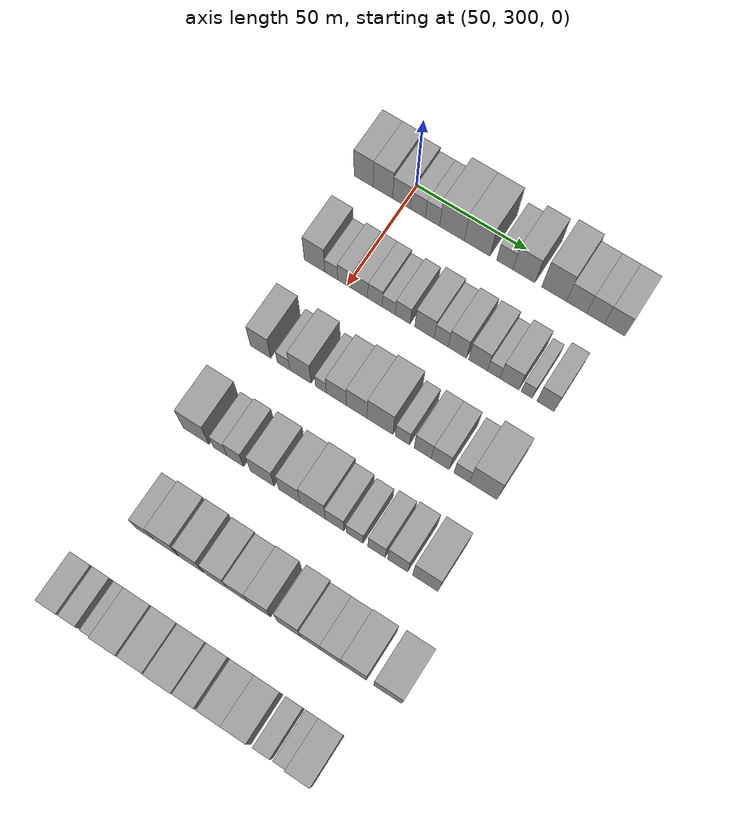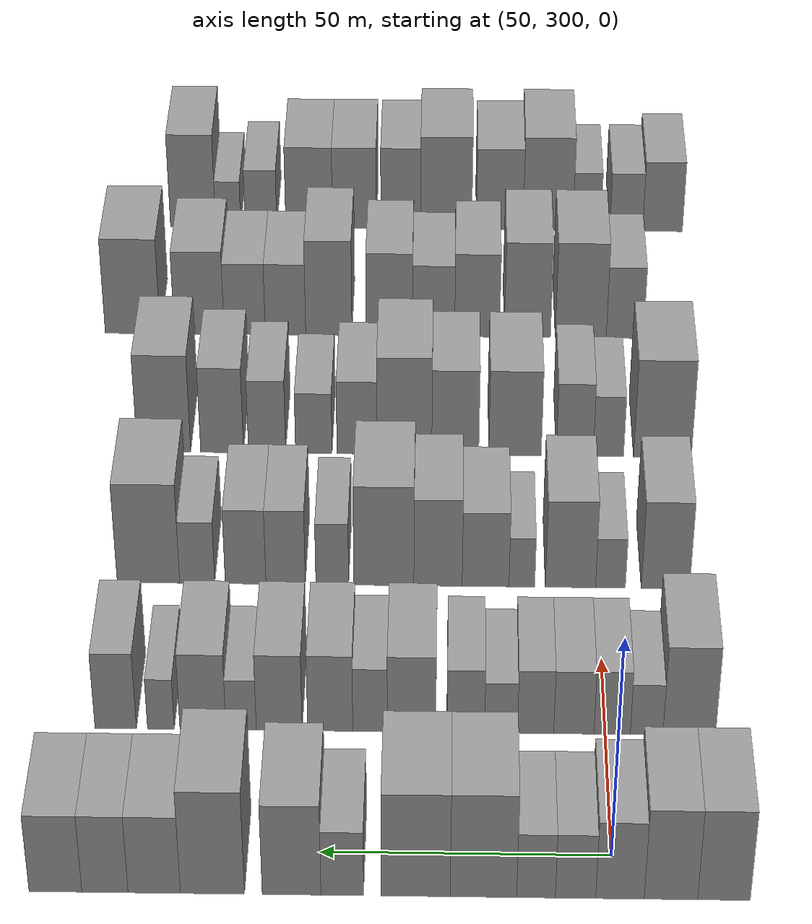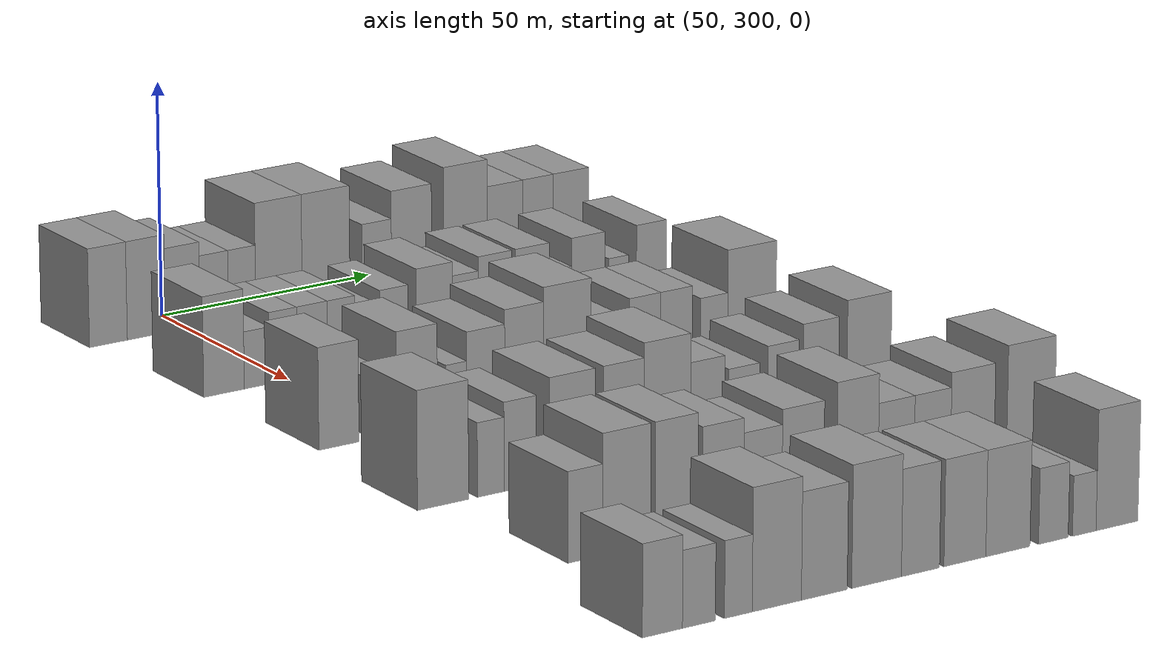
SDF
<sdf version="1.6">
 <world name="default">
  <model name="building_97">
   <static>1</static>
   <pose>50.0000 281.4803 0 0.000000 0.000000 0.000000</pose>
   <link name="link">
    <pose>0 0 10.50 0 0 0</pose>
    <collision name="collision"><geometry><box><size>20.0000 8.8783 21.0000</size></box></geometry></collision>
    <visual name="visual">
     <cast_shadows>0</cast_shadows>
     <geometry><box><size>20.0000 8.8783 21.0000</size></box></geometry>
     <material>
      <script>
       <uri>model://grey_wall/materials/scripts</uri>
       <uri>model://grey_wall/materials/textures</uri>
       <name>vrc/grey_wall</name>
      </script>
     </material>
    </visual>
   </link>
  </model>
  <model name="building_98">
   <static>1</static>
   <pose>50.0000 290.4282 0 0.000000 0.000000 0.000000</pose>
   <link name="link">
    <pose>0 0 10.50 0 0 0</pose>
    <collision name="collision"><geometry><box><size>20.0000 9.0176 21.0000</size></box></geometry></collision>
    <visual name="visual">
     <cast_shadows>0</cast_shadows>
     <geometry><box><size>20.0000 9.0176 21.0000</size></box></geometry>
     <material>
      <script>
       <uri>model://grey_wall/materials/scripts</uri>
       <uri>model://grey_wall/materials/textures</uri>
       <name>vrc/grey_wall</name>
      </script>
     </material>
    </visual>
   </link>
  </model>
  <model name="building_99">
   <static>1</static>
   <pose>50.0000 299.0356 0 0.000000 0.000000 0.000000</pose>
   <link name="link">
    <pose>0 0 9.00 0 0 0</pose>
    <collision name="collision"><geometry><box><size>20.0000 8.1972 18.0000</size></box></geometry></collision>
    <visual name="visual">
     <cast_shadows>0</cast_shadows>
     <geometry><box><size>20.0000 8.1972 18.0000</size></box></geometry>
     <material>
      <script>
       <uri>model://grey_wall/materials/scripts</uri>
       <uri>model://grey_wall/materials/textures</uri>
       <name>vrc/grey_wall</name>
      </script>
     </material>
    </visual>
   </link>
  </model>
  <model name="building_100">
   <static>1</static>
   <pose>50.0000 306.5376 0 0.000000 0.000000 0.000000</pose>
   <link name="link">
    <pose>0 0 7.50 0 0 0</pose>
    <collision name="collision"><geometry><box><size>20.0000 6.8069 15.0000</size></box></geometry></collision>
    <visual name="visual">
     <cast_shadows>0</cast_shadows>
     <geometry><box><size>20.0000 6.8069 15.0000</size></box></geometry>
     <material>
      <script>
       <uri>model://grey_wall/materials/scripts</uri>
       <uri>model://grey_wall/materials/textures</uri>
       <name>vrc/grey_wall</name>
      </script>
     </material>
    </visual>
   </link>
  </model>
  <model name="building_101">
   <static>1</static>
   <pose>50.0000 313.2041 0 0.000000 0.000000 0.000000</pose>
   <link name="link">
    <pose>0 0 7.50 0 0 0</pose>
    <collision name="collision"><geometry><box><size>20.0000 6.5261 15.0000</size></box></geometry></collision>
    <visual name="visual">
     <cast_shadows>0</cast_shadows>
     <geometry><box><size>20.0000 6.5261 15.0000</size></box></geometry>
     <material>
      <script>
       <uri>model://grey_wall/materials/scripts</uri>
       <uri>model://grey_wall/materials/textures</uri>
       <name>vrc/grey_wall</name>
      </script>
     </material>
    </visual>
   </link>
  </model>
  <model name="building_102">
   <static>1</static>
   <pose>50.0000 322.0785 0 0.000000 0.000000 0.000000</pose>
   <link name="link">
    <pose>0 0 12.00 0 0 0</pose>
    <collision name="collision"><geometry><box><size>20.0000 11.2226 24.0000</size></box></geometry></collision>
    <visual name="visual">
     <cast_shadows>0</cast_shadows>
     <geometry><box><size>20.0000 11.2226 24.0000</size></box></geometry>
     <material>
      <script>
       <uri>model://grey_wall/materials/scripts</uri>
       <uri>model://grey_wall/materials/textures</uri>
       <name>vrc/grey_wall</name>
      </script>
     </material>
    </visual>
   </link>
  </model>
  <model name="building_103">
   <static>1</static>
   <pose>50.0000 333.5019 0 0.000000 0.000000 0.000000</pose>
   <link name="link">
    <pose>0 0 12.00 0 0 0</pose>
    <collision name="collision"><geometry><box><size>20.0000 11.6243 24.0000</size></box></geometry></collision>
    <visual name="visual">
     <cast_shadows>0</cast_shadows>
     <geometry><box><size>20.0000 11.6243 24.0000</size></box></geometry>
     <material>
      <script>
       <uri>model://grey_wall/materials/scripts</uri>
       <uri>model://grey_wall/materials/textures</uri>
       <name>vrc/grey_wall</name>
      </script>
     </material>
    </visual>
   </link>
  </model>
  <model name="building_104">
   <static>1</static>
   <pose>50.0000 345.9176 0 0.000000 0.000000 0.000000</pose>
   <link name="link">
    <pose>0 0 7.50 0 0 0</pose>
    <collision name="collision"><geometry><box><size>20.0000 7.2070 15.0000</size></box></geometry></collision>
    <visual name="visual">
     <cast_shadows>0</cast_shadows>
     <geometry><box><size>20.0000 7.2070 15.0000</size></box></geometry>
     <material>
      <script>
       <uri>model://grey_wall/materials/scripts</uri>
       <uri>model://grey_wall/materials/textures</uri>
       <name>vrc/grey_wall</name>
      </script>
     </material>
    </visual>
   </link>
  </model>
  <model name="building_105">
   <static>1</static>
   <pose>50.0000 354.4840 0 0.000000 0.000000 0.000000</pose>
   <link name="link">
    <pose>0 0 10.50 0 0 0</pose>
    <collision name="collision"><geometry><box><size>20.0000 9.9259 21.0000</size></box></geometry></collision>
    <visual name="visual">
     <cast_shadows>0</cast_shadows>
     <geometry><box><size>20.0000 9.9259 21.0000</size></box></geometry>
     <material>
      <script>
       <uri>model://grey_wall/materials/scripts</uri>
       <uri>model://grey_wall/materials/textures</uri>
       <name>vrc/grey_wall</name>
      </script>
     </material>
    </visual>
   </link>
  </model>
  <model name="building_106">
   <static>1</static>
   <pose>50.0000 367.8768 0 0.000000 0.000000 0.000000</pose>
   <link name="link">
    <pose>0 0 12.00 0 0 0</pose>
    <collision name="collision"><geometry><box><size>20.0000 10.8597 24.0000</size></box></geometry></collision>
    <visual name="visual">
     <cast_shadows>0</cast_shadows>
     <geometry><box><size>20.0000 10.8597 24.0000</size></box></geometry>
     <material>
      <script>
       <uri>model://grey_wall/materials/scripts</uri>
       <uri>model://grey_wall/materials/textures</uri>
       <name>vrc/grey_wall</name>
      </script>
     </material>
    </visual>
   </link>
  </model>
  <model name="building_107">
   <static>1</static>
   <pose>50.0000 377.7399 0 0.000000 0.000000 0.000000</pose>
   <link name="link">
    <pose>0 0 9.00 0 0 0</pose>
    <collision name="collision"><geometry><box><size>20.0000 8.8666 18.0000</size></box></geometry></collision>
    <visual name="visual">
     <cast_shadows>0</cast_shadows>
     <geometry><box><size>20.0000 8.8666 18.0000</size></box></geometry>
     <material>
      <script>
       <uri>model://grey_wall/materials/scripts</uri>
       <uri>model://grey_wall/materials/textures</uri>
       <name>vrc/grey_wall</name>
      </script>
     </material>
    </visual>
   </link>
  </model>
  <model name="building_108">
   <static>1</static>
   <pose>50.0000 386.0869 0 0.000000 0.000000 0.000000</pose>
   <link name="link">
    <pose>0 0 9.00 0 0 0</pose>
    <collision name="collision"><geometry><box><size>20.0000 7.8273 18.0000</size></box></geometry></collision>
    <visual name="visual">
     <cast_shadows>0</cast_shadows>
     <geometry><box><size>20.0000 7.8273 18.0000</size></box></geometry>
     <material>
      <script>
       <uri>model://grey_wall/materials/scripts</uri>
       <uri>model://grey_wall/materials/textures</uri>
       <name>vrc/grey_wall</name>
      </script>
     </material>
    </visual>
   </link>
  </model>
  <model name="building_109">
   <static>1</static>
   <pose>50.0000 394.4726 0 0.000000 0.000000 0.000000</pose>
   <link name="link">
    <pose>0 0 9.00 0 0 0</pose>
    <collision name="collision"><geometry><box><size>20.0000 8.9442 18.0000</size></box></geometry></collision>
    <visual name="visual">
     <cast_shadows>0</cast_shadows>
     <geometry><box><size>20.0000 8.9442 18.0000</size></box></geometry>
     <material>
      <script>
       <uri>model://grey_wall/materials/scripts</uri>
       <uri>model://grey_wall/materials/textures</uri>
       <name>vrc/grey_wall</name>
      </script>
     </material>
    </visual>
   </link>
  </model>
  <model name="building_243">
   <static>1</static>
   <pose>90.0000 285.0131 0 0.000000 0.000000 0.000000</pose>
   <link name="link">
    <pose>0 0 10.50 0 0 0</pose>
    <collision name="collision"><geometry><box><size>20.0000 9.4214 21.0000</size></box></geometry></collision>
    <visual name="visual">
     <cast_shadows>0</cast_shadows>
     <geometry><box><size>20.0000 9.4214 21.0000</size></box></geometry>
     <material>
      <script>
       <uri>model://grey_wall/materials/scripts</uri>
       <uri>model://grey_wall/materials/textures</uri>
       <name>vrc/grey_wall</name>
      </script>
     </material>
    </visual>
   </link>
  </model>
  <model name="building_244">
   <static>1</static>
   <pose>90.0000 292.6523 0 0.000000 0.000000 0.000000</pose>
   <link name="link">
    <pose>0 0 6.00 0 0 0</pose>
    <collision name="collision"><geometry><box><size>20.0000 5.8571 12.0000</size></box></geometry></collision>
    <visual name="visual">
     <cast_shadows>0</cast_shadows>
     <geometry><box><size>20.0000 5.8571 12.0000</size></box></geometry>
     <material>
      <script>
       <uri>model://grey_wall/materials/scripts</uri>
       <uri>model://grey_wall/materials/textures</uri>
       <name>vrc/grey_wall</name>
      </script>
     </material>
    </visual>
   </link>
  </model>
  <model name="building_245">
   <static>1</static>
   <pose>90.0000 298.8329 0 0.000000 0.000000 0.000000</pose>
   <link name="link">
    <pose>0 0 7.50 0 0 0</pose>
    <collision name="collision"><geometry><box><size>20.0000 6.5039 15.0000</size></box></geometry></collision>
    <visual name="visual">
     <cast_shadows>0</cast_shadows>
     <geometry><box><size>20.0000 6.5039 15.0000</size></box></geometry>
     <material>
      <script>
       <uri>model://grey_wall/materials/scripts</uri>
       <uri>model://grey_wall/materials/textures</uri>
       <name>vrc/grey_wall</name>
      </script>
     </material>
    </visual>
   </link>
  </model>
  <model name="building_246">
   <static>1</static>
   <pose>90.0000 305.6870 0 0.000000 0.000000 0.000000</pose>
   <link name="link">
    <pose>0 0 7.50 0 0 0</pose>
    <collision name="collision"><geometry><box><size>20.0000 7.2043 15.0000</size></box></geometry></collision>
    <visual name="visual">
     <cast_shadows>0</cast_shadows>
     <geometry><box><size>20.0000 7.2043 15.0000</size></box></geometry>
     <material>
      <script>
       <uri>model://grey_wall/materials/scripts</uri>
       <uri>model://grey_wall/materials/textures</uri>
       <name>vrc/grey_wall</name>
      </script>
     </material>
    </visual>
   </link>
  </model>
  <model name="building_247">
   <static>1</static>
   <pose>90.0000 312.5411 0 0.000000 0.000000 0.000000</pose>
   <link name="link">
    <pose>0 0 7.50 0 0 0</pose>
    <collision name="collision"><geometry><box><size>20.0000 6.5039 15.0000</size></box></geometry></collision>
    <visual name="visual">
     <cast_shadows>0</cast_shadows>
     <geometry><box><size>20.0000 6.5039 15.0000</size></box></geometry>
     <material>
      <script>
       <uri>model://grey_wall/materials/scripts</uri>
       <uri>model://grey_wall/materials/textures</uri>
       <name>vrc/grey_wall</name>
      </script>
     </material>
    </visual>
   </link>
  </model>
  <model name="building_248">
   <static>1</static>
   <pose>90.0000 318.7344 0 0.000000 0.000000 0.000000</pose>
   <link name="link">
    <pose>0 0 6.00 0 0 0</pose>
    <collision name="collision"><geometry><box><size>20.0000 5.8826 12.0000</size></box></geometry></collision>
    <visual name="visual">
     <cast_shadows>0</cast_shadows>
     <geometry><box><size>20.0000 5.8826 12.0000</size></box></geometry>
     <material>
      <script>
       <uri>model://grey_wall/materials/scripts</uri>
       <uri>model://grey_wall/materials/textures</uri>
       <name>vrc/grey_wall</name>
      </script>
     </material>
    </visual>
   </link>
  </model>
  <model name="building_249">
   <static>1</static>
   <pose>90.0000 325.0450 0 0.000000 0.000000 0.000000</pose>
   <link name="link">
    <pose>0 0 7.50 0 0 0</pose>
    <collision name="collision"><geometry><box><size>20.0000 6.7387 15.0000</size></box></geometry></collision>
    <visual name="visual">
     <cast_shadows>0</cast_shadows>
     <geometry><box><size>20.0000 6.7387 15.0000</size></box></geometry>
     <material>
      <script>
       <uri>model://grey_wall/materials/scripts</uri>
       <uri>model://grey_wall/materials/textures</uri>
       <name>vrc/grey_wall</name>
      </script>
     </material>
    </visual>
   </link>
  </model>
  <model name="building_250">
   <static>1</static>
   <pose>90.0000 334.7540 0 0.000000 0.000000 0.000000</pose>
   <link name="link">
    <pose>0 0 9.00 0 0 0</pose>
    <collision name="collision"><geometry><box><size>20.0000 8.6794 18.0000</size></box></geometry></collision>
    <visual name="visual">
     <cast_shadows>0</cast_shadows>
     <geometry><box><size>20.0000 8.6794 18.0000</size></box></geometry>
     <material>
      <script>
       <uri>model://grey_wall/materials/scripts</uri>
       <uri>model://grey_wall/materials/textures</uri>
       <name>vrc/grey_wall</name>
      </script>
     </material>
    </visual>
   </link>
  </model>
  <model name="building_251">
   <static>1</static>
   <pose>90.0000 342.1892 0 0.000000 0.000000 0.000000</pose>
   <link name="link">
    <pose>0 0 7.50 0 0 0</pose>
    <collision name="collision"><geometry><box><size>20.0000 6.1909 15.0000</size></box></geometry></collision>
    <visual name="visual">
     <cast_shadows>0</cast_shadows>
     <geometry><box><size>20.0000 6.1909 15.0000</size></box></geometry>
     <material>
      <script>
       <uri>model://grey_wall/materials/scripts</uri>
       <uri>model://grey_wall/materials/textures</uri>
       <name>vrc/grey_wall</name>
      </script>
     </material>
    </visual>
   </link>
  </model>
  <model name="building_252">
   <static>1</static>
   <pose>90.0000 349.3246 0 0.000000 0.000000 0.000000</pose>
   <link name="link">
    <pose>0 0 9.00 0 0 0</pose>
    <collision name="collision"><geometry><box><size>20.0000 8.0799 18.0000</size></box></geometry></collision>
    <visual name="visual">
     <cast_shadows>0</cast_shadows>
     <geometry><box><size>20.0000 8.0799 18.0000</size></box></geometry>
     <material>
      <script>
       <uri>model://grey_wall/materials/scripts</uri>
       <uri>model://grey_wall/materials/textures</uri>
       <name>vrc/grey_wall</name>
      </script>
     </material>
    </visual>
   </link>
  </model>
  <model name="building_253">
   <static>1</static>
   <pose>90.0000 358.4822 0 0.000000 0.000000 0.000000</pose>
   <link name="link">
    <pose>0 0 9.00 0 0 0</pose>
    <collision name="collision"><geometry><box><size>20.0000 8.2353 18.0000</size></box></geometry></collision>
    <visual name="visual">
     <cast_shadows>0</cast_shadows>
     <geometry><box><size>20.0000 8.2353 18.0000</size></box></geometry>
     <material>
      <script>
       <uri>model://grey_wall/materials/scripts</uri>
       <uri>model://grey_wall/materials/textures</uri>
       <name>vrc/grey_wall</name>
      </script>
     </material>
    </visual>
   </link>
  </model>
  <model name="building_254">
   <static>1</static>
   <pose>90.0000 365.3271 0 0.000000 0.000000 0.000000</pose>
   <link name="link">
    <pose>0 0 6.00 0 0 0</pose>
    <collision name="collision"><geometry><box><size>20.0000 5.4544 12.0000</size></box></geometry></collision>
    <visual name="visual">
     <cast_shadows>0</cast_shadows>
     <geometry><box><size>20.0000 5.4544 12.0000</size></box></geometry>
     <material>
      <script>
       <uri>model://grey_wall/materials/scripts</uri>
       <uri>model://grey_wall/materials/textures</uri>
       <name>vrc/grey_wall</name>
      </script>
     </material>
    </visual>
   </link>
  </model>
  <model name="building_255">
   <static>1</static>
   <pose>90.0000 372.1898 0 0.000000 0.000000 0.000000</pose>
   <link name="link">
    <pose>0 0 9.00 0 0 0</pose>
    <collision name="collision"><geometry><box><size>20.0000 8.2711 18.0000</size></box></geometry></collision>
    <visual name="visual">
     <cast_shadows>0</cast_shadows>
     <geometry><box><size>20.0000 8.2711 18.0000</size></box></geometry>
     <material>
      <script>
       <uri>model://grey_wall/materials/scripts</uri>
       <uri>model://grey_wall/materials/textures</uri>
       <name>vrc/grey_wall</name>
      </script>
     </material>
    </visual>
   </link>
  </model>
  <model name="building_256">
   <static>1</static>
   <pose>90.0000 379.7319 0 0.000000 0.000000 0.000000</pose>
   <link name="link">
    <pose>0 0 6.00 0 0 0</pose>
    <collision name="collision"><geometry><box><size>20.0000 4.8130 12.0000</size></box></geometry></collision>
    <visual name="visual">
     <cast_shadows>0</cast_shadows>
     <geometry><box><size>20.0000 4.8130 12.0000</size></box></geometry>
     <material>
      <script>
       <uri>model://grey_wall/materials/scripts</uri>
       <uri>model://grey_wall/materials/textures</uri>
       <name>vrc/grey_wall</name>
      </script>
     </material>
    </visual>
   </link>
  </model>
  <model name="building_257">
   <static>1</static>
   <pose>90.0000 387.8607 0 0.000000 0.000000 0.000000</pose>
   <link name="link">
    <pose>0 0 9.00 0 0 0</pose>
    <collision name="collision"><geometry><box><size>20.0000 7.4447 18.0000</size></box></geometry></collision>
    <visual name="visual">
     <cast_shadows>0</cast_shadows>
     <geometry><box><size>20.0000 7.4447 18.0000</size></box></geometry>
     <material>
      <script>
       <uri>model://grey_wall/materials/scripts</uri>
       <uri>model://grey_wall/materials/textures</uri>
       <name>vrc/grey_wall</name>
      </script>
     </material>
    </visual>
   </link>
  </model>
  <model name="building_377">
   <static>1</static>
   <pose>130.0000 287.1975 0 0.000000 0.000000 0.000000</pose>
   <link name="link">
    <pose>0 0 10.50 0 0 0</pose>
    <collision name="collision"><geometry><box><size>20.0000 9.1685 21.0000</size></box></geometry></collision>
    <visual name="visual">
     <cast_shadows>0</cast_shadows>
     <geometry><box><size>20.0000 9.1685 21.0000</size></box></geometry>
     <material>
      <script>
       <uri>model://grey_wall/materials/scripts</uri>
       <uri>model://grey_wall/materials/textures</uri>
       <name>vrc/grey_wall</name>
      </script>
     </material>
    </visual>
   </link>
  </model>
  <model name="building_378">
   <static>1</static>
   <pose>130.0000 297.6153 0 0.000000 0.000000 0.000000</pose>
   <link name="link">
    <pose>0 0 6.00 0 0 0</pose>
    <collision name="collision"><geometry><box><size>20.0000 5.6670 12.0000</size></box></geometry></collision>
    <visual name="visual">
     <cast_shadows>0</cast_shadows>
     <geometry><box><size>20.0000 5.6670 12.0000</size></box></geometry>
     <material>
      <script>
       <uri>model://grey_wall/materials/scripts</uri>
       <uri>model://grey_wall/materials/textures</uri>
       <name>vrc/grey_wall</name>
      </script>
     </material>
    </visual>
   </link>
  </model>
  <model name="building_379">
   <static>1</static>
   <pose>130.0000 305.1991 0 0.000000 0.000000 0.000000</pose>
   <link name="link">
    <pose>0 0 10.50 0 0 0</pose>
    <collision name="collision"><geometry><box><size>20.0000 9.5007 21.0000</size></box></geometry></collision>
    <visual name="visual">
     <cast_shadows>0</cast_shadows>
     <geometry><box><size>20.0000 9.5007 21.0000</size></box></geometry>
     <material>
      <script>
       <uri>model://grey_wall/materials/scripts</uri>
       <uri>model://grey_wall/materials/textures</uri>
       <name>vrc/grey_wall</name>
      </script>
     </material>
    </visual>
   </link>
  </model>
  <model name="building_380">
   <static>1</static>
   <pose>130.0000 314.3895 0 0.000000 0.000000 0.000000</pose>
   <link name="link">
    <pose>0 0 6.00 0 0 0</pose>
    <collision name="collision"><geometry><box><size>20.0000 4.8801 12.0000</size></box></geometry></collision>
    <visual name="visual">
     <cast_shadows>0</cast_shadows>
     <geometry><box><size>20.0000 4.8801 12.0000</size></box></geometry>
     <material>
      <script>
       <uri>model://grey_wall/materials/scripts</uri>
       <uri>model://grey_wall/materials/textures</uri>
       <name>vrc/grey_wall</name>
      </script>
     </material>
    </visual>
   </link>
  </model>
  <model name="building_381">
   <static>1</static>
   <pose>130.0000 321.2710 0 0.000000 0.000000 0.000000</pose>
   <link name="link">
    <pose>0 0 9.00 0 0 0</pose>
    <collision name="collision"><geometry><box><size>20.0000 8.8830 18.0000</size></box></geometry></collision>
    <visual name="visual">
     <cast_shadows>0</cast_shadows>
     <geometry><box><size>20.0000 8.8830 18.0000</size></box></geometry>
     <material>
      <script>
       <uri>model://grey_wall/materials/scripts</uri>
       <uri>model://grey_wall/materials/textures</uri>
       <name>vrc/grey_wall</name>
      </script>
     </material>
    </visual>
   </link>
  </model>
  <model name="building_382">
   <static>1</static>
   <pose>130.0000 330.2864 0 0.000000 0.000000 0.000000</pose>
   <link name="link">
    <pose>0 0 10.50 0 0 0</pose>
    <collision name="collision"><geometry><box><size>20.0000 9.1477 21.0000</size></box></geometry></collision>
    <visual name="visual">
     <cast_shadows>0</cast_shadows>
     <geometry><box><size>20.0000 9.1477 21.0000</size></box></geometry>
     <material>
      <script>
       <uri>model://grey_wall/materials/scripts</uri>
       <uri>model://grey_wall/materials/textures</uri>
       <name>vrc/grey_wall</name>
      </script>
     </material>
    </visual>
   </link>
  </model>
  <model name="building_383">
   <static>1</static>
   <pose>130.0000 340.5444 0 0.000000 0.000000 0.000000</pose>
   <link name="link">
    <pose>0 0 12.00 0 0 0</pose>
    <collision name="collision"><geometry><box><size>20.0000 11.3683 24.0000</size></box></geometry></collision>
    <visual name="visual">
     <cast_shadows>0</cast_shadows>
     <geometry><box><size>20.0000 11.3683 24.0000</size></box></geometry>
     <material>
      <script>
       <uri>model://grey_wall/materials/scripts</uri>
       <uri>model://grey_wall/materials/textures</uri>
       <name>vrc/grey_wall</name>
      </script>
     </material>
    </visual>
   </link>
  </model>
  <model name="building_384">
   <static>1</static>
   <pose>130.0000 350.3355 0 0.000000 0.000000 0.000000</pose>
   <link name="link">
    <pose>0 0 7.50 0 0 0</pose>
    <collision name="collision"><geometry><box><size>20.0000 6.2139 15.0000</size></box></geometry></collision>
    <visual name="visual">
     <cast_shadows>0</cast_shadows>
     <geometry><box><size>20.0000 6.2139 15.0000</size></box></geometry>
     <material>
      <script>
       <uri>model://grey_wall/materials/scripts</uri>
       <uri>model://grey_wall/materials/textures</uri>
       <name>vrc/grey_wall</name>
      </script>
     </material>
    </visual>
   </link>
  </model>
  <model name="building_385">
   <static>1</static>
   <pose>130.0000 359.1834 0 0.000000 0.000000 0.000000</pose>
   <link name="link">
    <pose>0 0 9.00 0 0 0</pose>
    <collision name="collision"><geometry><box><size>20.0000 7.4818 18.0000</size></box></geometry></collision>
    <visual name="visual">
     <cast_shadows>0</cast_shadows>
     <geometry><box><size>20.0000 7.4818 18.0000</size></box></geometry>
     <material>
      <script>
       <uri>model://grey_wall/materials/scripts</uri>
       <uri>model://grey_wall/materials/textures</uri>
       <name>vrc/grey_wall</name>
      </script>
     </material>
    </visual>
   </link>
  </model>
  <model name="building_386">
   <static>1</static>
   <pose>130.0000 366.7861 0 0.000000 0.000000 0.000000</pose>
   <link name="link">
    <pose>0 0 9.00 0 0 0</pose>
    <collision name="collision"><geometry><box><size>20.0000 7.7238 18.0000</size></box></geometry></collision>
    <visual name="visual">
     <cast_shadows>0</cast_shadows>
     <geometry><box><size>20.0000 7.7238 18.0000</size></box></geometry>
     <material>
      <script>
       <uri>model://grey_wall/materials/scripts</uri>
       <uri>model://grey_wall/materials/textures</uri>
       <name>vrc/grey_wall</name>
      </script>
     </material>
    </visual>
   </link>
  </model>
  <model name="building_387">
   <static>1</static>
   <pose>130.0000 375.9779 0 0.000000 0.000000 0.000000</pose>
   <link name="link">
    <pose>0 0 7.50 0 0 0</pose>
    <collision name="collision"><geometry><box><size>20.0000 6.6596 15.0000</size></box></geometry></collision>
    <visual name="visual">
     <cast_shadows>0</cast_shadows>
     <geometry><box><size>20.0000 6.6596 15.0000</size></box></geometry>
     <material>
      <script>
       <uri>model://grey_wall/materials/scripts</uri>
       <uri>model://grey_wall/materials/textures</uri>
       <name>vrc/grey_wall</name>
      </script>
     </material>
    </visual>
   </link>
  </model>
  <model name="building_388">
   <static>1</static>
   <pose>130.0000 385.2452 0 0.000000 0.000000 0.000000</pose>
   <link name="link">
    <pose>0 0 12.00 0 0 0</pose>
    <collision name="collision"><geometry><box><size>20.0000 11.8752 24.0000</size></box></geometry></collision>
    <visual name="visual">
     <cast_shadows>0</cast_shadows>
     <geometry><box><size>20.0000 11.8752 24.0000</size></box></geometry>
     <material>
      <script>
       <uri>model://grey_wall/materials/scripts</uri>
       <uri>model://grey_wall/materials/textures</uri>
       <name>vrc/grey_wall</name>
      </script>
     </material>
    </visual>
   </link>
  </model>
  <model name="building_515">
   <static>1</static>
   <pose>170.0000 285.7174 0 0.000000 0.000000 0.000000</pose>
   <link name="link">
    <pose>0 0 12.00 0 0 0</pose>
    <collision name="collision"><geometry><box><size>20.0000 11.5358 24.0000</size></box></geometry></collision>
    <visual name="visual">
     <cast_shadows>0</cast_shadows>
     <geometry><box><size>20.0000 11.5358 24.0000</size></box></geometry>
     <material>
      <script>
       <uri>model://grey_wall/materials/scripts</uri>
       <uri>model://grey_wall/materials/textures</uri>
       <name>vrc/grey_wall</name>
      </script>
     </material>
    </visual>
   </link>
  </model>
  <model name="building_516">
   <static>1</static>
   <pose>170.0000 296.5160 0 0.000000 0.000000 0.000000</pose>
   <link name="link">
    <pose>0 0 7.50 0 0 0</pose>
    <collision name="collision"><geometry><box><size>20.0000 6.0614 15.0000</size></box></geometry></collision>
    <visual name="visual">
     <cast_shadows>0</cast_shadows>
     <geometry><box><size>20.0000 6.0614 15.0000</size></box></geometry>
     <material>
      <script>
       <uri>model://grey_wall/materials/scripts</uri>
       <uri>model://grey_wall/materials/textures</uri>
       <name>vrc/grey_wall</name>
      </script>
     </material>
    </visual>
   </link>
  </model>
  <model name="building_517">
   <static>1</static>
   <pose>170.0000 303.2435 0 0.000000 0.000000 0.000000</pose>
   <link name="link">
    <pose>0 0 9.00 0 0 0</pose>
    <collision name="collision"><geometry><box><size>20.0000 7.3937 18.0000</size></box></geometry></collision>
    <visual name="visual">
     <cast_shadows>0</cast_shadows>
     <geometry><box><size>20.0000 7.3937 18.0000</size></box></geometry>
     <material>
      <script>
       <uri>model://grey_wall/materials/scripts</uri>
       <uri>model://grey_wall/materials/textures</uri>
       <name>vrc/grey_wall</name>
      </script>
     </material>
    </visual>
   </link>
  </model>
  <model name="building_518">
   <static>1</static>
   <pose>170.0000 315.1786 0 0.000000 0.000000 0.000000</pose>
   <link name="link">
    <pose>0 0 10.50 0 0 0</pose>
    <collision name="collision"><geometry><box><size>20.0000 10.4764 21.0000</size></box></geometry></collision>
    <visual name="visual">
     <cast_shadows>0</cast_shadows>
     <geometry><box><size>20.0000 10.4764 21.0000</size></box></geometry>
     <material>
      <script>
       <uri>model://grey_wall/materials/scripts</uri>
       <uri>model://grey_wall/materials/textures</uri>
       <name>vrc/grey_wall</name>
      </script>
     </material>
    </visual>
   </link>
  </model>
  <model name="building_519">
   <static>1</static>
   <pose>170.0000 327.1107 0 0.000000 0.000000 0.000000</pose>
   <link name="link">
    <pose>0 0 10.50 0 0 0</pose>
    <collision name="collision"><geometry><box><size>20.0000 9.3878 21.0000</size></box></geometry></collision>
    <visual name="visual">
     <cast_shadows>0</cast_shadows>
     <geometry><box><size>20.0000 9.3878 21.0000</size></box></geometry>
     <material>
      <script>
       <uri>model://grey_wall/materials/scripts</uri>
       <uri>model://grey_wall/materials/textures</uri>
       <name>vrc/grey_wall</name>
      </script>
     </material>
    </visual>
   </link>
  </model>
  <model name="building_520">
   <static>1</static>
   <pose>170.0000 337.2861 0 0.000000 0.000000 0.000000</pose>
   <link name="link">
    <pose>0 0 12.00 0 0 0</pose>
    <collision name="collision"><geometry><box><size>20.0000 10.9631 24.0000</size></box></geometry></collision>
    <visual name="visual">
     <cast_shadows>0</cast_shadows>
     <geometry><box><size>20.0000 10.9631 24.0000</size></box></geometry>
     <material>
      <script>
       <uri>model://grey_wall/materials/scripts</uri>
       <uri>model://grey_wall/materials/textures</uri>
       <name>vrc/grey_wall</name>
      </script>
     </material>
    </visual>
   </link>
  </model>
  <model name="building_521">
   <static>1</static>
   <pose>170.0000 346.7545 0 0.000000 0.000000 0.000000</pose>
   <link name="link">
    <pose>0 0 9.00 0 0 0</pose>
    <collision name="collision"><geometry><box><size>20.0000 7.9737 18.0000</size></box></geometry></collision>
    <visual name="visual">
     <cast_shadows>0</cast_shadows>
     <geometry><box><size>20.0000 7.9737 18.0000</size></box></geometry>
     <material>
      <script>
       <uri>model://grey_wall/materials/scripts</uri>
       <uri>model://grey_wall/materials/textures</uri>
       <name>vrc/grey_wall</name>
      </script>
     </material>
    </visual>
   </link>
  </model>
  <model name="building_522">
   <static>1</static>
   <pose>170.0000 355.3841 0 0.000000 0.000000 0.000000</pose>
   <link name="link">
    <pose>0 0 7.50 0 0 0</pose>
    <collision name="collision"><geometry><box><size>20.0000 7.2855 15.0000</size></box></geometry></collision>
    <visual name="visual">
     <cast_shadows>0</cast_shadows>
     <geometry><box><size>20.0000 7.2855 15.0000</size></box></geometry>
     <material>
      <script>
       <uri>model://grey_wall/materials/scripts</uri>
       <uri>model://grey_wall/materials/textures</uri>
       <name>vrc/grey_wall</name>
      </script>
     </material>
    </visual>
   </link>
  </model>
  <model name="building_523">
   <static>1</static>
   <pose>170.0000 364.7437 0 0.000000 0.000000 0.000000</pose>
   <link name="link">
    <pose>0 0 9.00 0 0 0</pose>
    <collision name="collision"><geometry><box><size>20.0000 7.4338 18.0000</size></box></geometry></collision>
    <visual name="visual">
     <cast_shadows>0</cast_shadows>
     <geometry><box><size>20.0000 7.4338 18.0000</size></box></geometry>
     <material>
      <script>
       <uri>model://grey_wall/materials/scripts</uri>
       <uri>model://grey_wall/materials/textures</uri>
       <name>vrc/grey_wall</name>
      </script>
     </material>
    </visual>
   </link>
  </model>
  <model name="building_524">
   <static>1</static>
   <pose>170.0000 373.7536 0 0.000000 0.000000 0.000000</pose>
   <link name="link">
    <pose>0 0 10.50 0 0 0</pose>
    <collision name="collision"><geometry><box><size>20.0000 8.5860 21.0000</size></box></geometry></collision>
    <visual name="visual">
     <cast_shadows>0</cast_shadows>
     <geometry><box><size>20.0000 8.5860 21.0000</size></box></geometry>
     <material>
      <script>
       <uri>model://grey_wall/materials/scripts</uri>
       <uri>model://grey_wall/materials/textures</uri>
       <name>vrc/grey_wall</name>
      </script>
     </material>
    </visual>
   </link>
  </model>
  <model name="building_525">
   <static>1</static>
   <pose>170.0000 385.3958 0 0.000000 0.000000 0.000000</pose>
   <link name="link">
    <pose>0 0 12.00 0 0 0</pose>
    <collision name="collision"><geometry><box><size>20.0000 10.6984 24.0000</size></box></geometry></collision>
    <visual name="visual">
     <cast_shadows>0</cast_shadows>
     <geometry><box><size>20.0000 10.6984 24.0000</size></box></geometry>
     <material>
      <script>
       <uri>model://grey_wall/materials/scripts</uri>
       <uri>model://grey_wall/materials/textures</uri>
       <name>vrc/grey_wall</name>
      </script>
     </material>
    </visual>
   </link>
  </model>
  <model name="building_644">
   <static>1</static>
   <pose>210.0000 291.5758 0 0.000000 0.000000 0.000000</pose>
   <link name="link">
    <pose>0 0 9.00 0 0 0</pose>
    <collision name="collision"><geometry><box><size>20.0000 7.8148 18.0000</size></box></geometry></collision>
    <visual name="visual">
     <cast_shadows>0</cast_shadows>
     <geometry><box><size>20.0000 7.8148 18.0000</size></box></geometry>
     <material>
      <script>
       <uri>model://grey_wall/materials/scripts</uri>
       <uri>model://grey_wall/materials/textures</uri>
       <name>vrc/grey_wall</name>
      </script>
     </material>
    </visual>
   </link>
  </model>
  <model name="building_645">
   <static>1</static>
   <pose>210.0000 300.8366 0 0.000000 0.000000 0.000000</pose>
   <link name="link">
    <pose>0 0 12.00 0 0 0</pose>
    <collision name="collision"><geometry><box><size>20.0000 10.7068 24.0000</size></box></geometry></collision>
    <visual name="visual">
     <cast_shadows>0</cast_shadows>
     <geometry><box><size>20.0000 10.7068 24.0000</size></box></geometry>
     <material>
      <script>
       <uri>model://grey_wall/materials/scripts</uri>
       <uri>model://grey_wall/materials/textures</uri>
       <name>vrc/grey_wall</name>
      </script>
     </material>
    </visual>
   </link>
  </model>
  <model name="building_646">
   <static>1</static>
   <pose>210.0000 312.0461 0 0.000000 0.000000 0.000000</pose>
   <link name="link">
    <pose>0 0 12.00 0 0 0</pose>
    <collision name="collision"><geometry><box><size>20.0000 9.7122 24.0000</size></box></geometry></collision>
    <visual name="visual">
     <cast_shadows>0</cast_shadows>
     <geometry><box><size>20.0000 9.7122 24.0000</size></box></geometry>
     <material>
      <script>
       <uri>model://grey_wall/materials/scripts</uri>
       <uri>model://grey_wall/materials/textures</uri>
       <name>vrc/grey_wall</name>
      </script>
     </material>
    </visual>
   </link>
  </model>
  <model name="building_647">
   <static>1</static>
   <pose>210.0000 322.6206 0 0.000000 0.000000 0.000000</pose>
   <link name="link">
    <pose>0 0 10.50 0 0 0</pose>
    <collision name="collision"><geometry><box><size>20.0000 9.4367 21.0000</size></box></geometry></collision>
    <visual name="visual">
     <cast_shadows>0</cast_shadows>
     <geometry><box><size>20.0000 9.4367 21.0000</size></box></geometry>
     <material>
      <script>
       <uri>model://grey_wall/materials/scripts</uri>
       <uri>model://grey_wall/materials/textures</uri>
       <name>vrc/grey_wall</name>
      </script>
     </material>
    </visual>
   </link>
  </model>
  <model name="building_648">
   <static>1</static>
   <pose>210.0000 331.7750 0 0.000000 0.000000 0.000000</pose>
   <link name="link">
    <pose>0 0 9.00 0 0 0</pose>
    <collision name="collision"><geometry><box><size>20.0000 8.8722 18.0000</size></box></geometry></collision>
    <visual name="visual">
     <cast_shadows>0</cast_shadows>
     <geometry><box><size>20.0000 8.8722 18.0000</size></box></geometry>
     <material>
      <script>
       <uri>model://grey_wall/materials/scripts</uri>
       <uri>model://grey_wall/materials/textures</uri>
       <name>vrc/grey_wall</name>
      </script>
     </material>
    </visual>
   </link>
  </model>
  <model name="building_649">
   <static>1</static>
   <pose>210.0000 341.0639 0 0.000000 0.000000 0.000000</pose>
   <link name="link">
    <pose>0 0 10.50 0 0 0</pose>
    <collision name="collision"><geometry><box><size>20.0000 9.7055 21.0000</size></box></geometry></collision>
    <visual name="visual">
     <cast_shadows>0</cast_shadows>
     <geometry><box><size>20.0000 9.7055 21.0000</size></box></geometry>
     <material>
      <script>
       <uri>model://grey_wall/materials/scripts</uri>
       <uri>model://grey_wall/materials/textures</uri>
       <name>vrc/grey_wall</name>
      </script>
     </material>
    </visual>
   </link>
  </model>
  <model name="building_650">
   <static>1</static>
   <pose>210.0000 353.7854 0 0.000000 0.000000 0.000000</pose>
   <link name="link">
    <pose>0 0 12.00 0 0 0</pose>
    <collision name="collision"><geometry><box><size>20.0000 9.7375 24.0000</size></box></geometry></collision>
    <visual name="visual">
     <cast_shadows>0</cast_shadows>
     <geometry><box><size>20.0000 9.7375 24.0000</size></box></geometry>
     <material>
      <script>
       <uri>model://grey_wall/materials/scripts</uri>
       <uri>model://grey_wall/materials/textures</uri>
       <name>vrc/grey_wall</name>
      </script>
     </material>
    </visual>
   </link>
  </model>
  <model name="building_651">
   <static>1</static>
   <pose>210.0000 362.9078 0 0.000000 0.000000 0.000000</pose>
   <link name="link">
    <pose>0 0 9.00 0 0 0</pose>
    <collision name="collision"><geometry><box><size>20.0000 8.5073 18.0000</size></box></geometry></collision>
    <visual name="visual">
     <cast_shadows>0</cast_shadows>
     <geometry><box><size>20.0000 8.5073 18.0000</size></box></geometry>
     <material>
      <script>
       <uri>model://grey_wall/materials/scripts</uri>
       <uri>model://grey_wall/materials/textures</uri>
       <name>vrc/grey_wall</name>
      </script>
     </material>
    </visual>
   </link>
  </model>
  <model name="building_652">
   <static>1</static>
   <pose>210.0000 371.4982 0 0.000000 0.000000 0.000000</pose>
   <link name="link">
    <pose>0 0 9.00 0 0 0</pose>
    <collision name="collision"><geometry><box><size>20.0000 8.6735 18.0000</size></box></geometry></collision>
    <visual name="visual">
     <cast_shadows>0</cast_shadows>
     <geometry><box><size>20.0000 8.6735 18.0000</size></box></geometry>
     <material>
      <script>
       <uri>model://grey_wall/materials/scripts</uri>
       <uri>model://grey_wall/materials/textures</uri>
       <name>vrc/grey_wall</name>
      </script>
     </material>
    </visual>
   </link>
  </model>
  <model name="building_653">
   <static>1</static>
   <pose>210.0000 381.0669 0 0.000000 0.000000 0.000000</pose>
   <link name="link">
    <pose>0 0 10.50 0 0 0</pose>
    <collision name="collision"><geometry><box><size>20.0000 10.4639 21.0000</size></box></geometry></collision>
    <visual name="visual">
     <cast_shadows>0</cast_shadows>
     <geometry><box><size>20.0000 10.4639 21.0000</size></box></geometry>
     <material>
      <script>
       <uri>model://grey_wall/materials/scripts</uri>
       <uri>model://grey_wall/materials/textures</uri>
       <name>vrc/grey_wall</name>
      </script>
     </material>
    </visual>
   </link>
  </model>
  <model name="building_654">
   <static>1</static>
   <pose>210.0000 395.0880 0 0.000000 0.000000 0.000000</pose>
   <link name="link">
    <pose>0 0 12.00 0 0 0</pose>
    <collision name="collision"><geometry><box><size>20.0000 11.5782 24.0000</size></box></geometry></collision>
    <visual name="visual">
     <cast_shadows>0</cast_shadows>
     <geometry><box><size>20.0000 11.5782 24.0000</size></box></geometry>
     <material>
      <script>
       <uri>model://grey_wall/materials/scripts</uri>
       <uri>model://grey_wall/materials/textures</uri>
       <name>vrc/grey_wall</name>
      </script>
     </material>
    </visual>
   </link>
  </model>
  <model name="building_781">
   <static>1</static>
   <pose>250.0000 281.6152 0 0.000000 0.000000 0.000000</pose>
   <link name="link">
    <pose>0 0 9.00 0 0 0</pose>
    <collision name="collision"><geometry><box><size>20.0000 8.7501 18.0000</size></box></geometry></collision>
    <visual name="visual">
     <cast_shadows>0</cast_shadows>
     <geometry><box><size>20.0000 8.7501 18.0000</size></box></geometry>
     <material>
      <script>
       <uri>model://grey_wall/materials/scripts</uri>
       <uri>model://grey_wall/materials/textures</uri>
       <name>vrc/grey_wall</name>
      </script>
     </material>
    </visual>
   </link>
  </model>
  <model name="building_782">
   <static>1</static>
   <pose>250.0000 289.6118 0 0.000000 0.000000 0.000000</pose>
   <link name="link">
    <pose>0 0 7.50 0 0 0</pose>
    <collision name="collision"><geometry><box><size>20.0000 7.2429 15.0000</size></box></geometry></collision>
    <visual name="visual">
     <cast_shadows>0</cast_shadows>
     <geometry><box><size>20.0000 7.2429 15.0000</size></box></geometry>
     <material>
      <script>
       <uri>model://grey_wall/materials/scripts</uri>
       <uri>model://grey_wall/materials/textures</uri>
       <name>vrc/grey_wall</name>
      </script>
     </material>
    </visual>
   </link>
  </model>
  <model name="building_783">
   <static>1</static>
   <pose>250.0000 298.3084 0 0.000000 0.000000 0.000000</pose>
   <link name="link">
    <pose>0 0 7.50 0 0 0</pose>
    <collision name="collision"><geometry><box><size>20.0000 6.1505 15.0000</size></box></geometry></collision>
    <visual name="visual">
     <cast_shadows>0</cast_shadows>
     <geometry><box><size>20.0000 6.1505 15.0000</size></box></geometry>
     <material>
      <script>
       <uri>model://grey_wall/materials/scripts</uri>
       <uri>model://grey_wall/materials/textures</uri>
       <name>vrc/grey_wall</name>
      </script>
     </material>
    </visual>
   </link>
  </model>
  <model name="building_784">
   <static>1</static>
   <pose>250.0000 306.8667 0 0.000000 0.000000 0.000000</pose>
   <link name="link">
    <pose>0 0 12.00 0 0 0</pose>
    <collision name="collision"><geometry><box><size>20.0000 10.9661 24.0000</size></box></geometry></collision>
    <visual name="visual">
     <cast_shadows>0</cast_shadows>
     <geometry><box><size>20.0000 10.9661 24.0000</size></box></geometry>
     <material>
      <script>
       <uri>model://grey_wall/materials/scripts</uri>
       <uri>model://grey_wall/materials/textures</uri>
       <name>vrc/grey_wall</name>
      </script>
     </material>
    </visual>
   </link>
  </model>
  <model name="building_785">
   <static>1</static>
   <pose>250.0000 317.5060 0 0.000000 0.000000 0.000000</pose>
   <link name="link">
    <pose>0 0 10.50 0 0 0</pose>
    <collision name="collision"><geometry><box><size>20.0000 10.3125 21.0000</size></box></geometry></collision>
    <visual name="visual">
     <cast_shadows>0</cast_shadows>
     <geometry><box><size>20.0000 10.3125 21.0000</size></box></geometry>
     <material>
      <script>
       <uri>model://grey_wall/materials/scripts</uri>
       <uri>model://grey_wall/materials/textures</uri>
       <name>vrc/grey_wall</name>
      </script>
     </material>
    </visual>
   </link>
  </model>
  <model name="building_786">
   <static>1</static>
   <pose>250.0000 329.3119 0 0.000000 0.000000 0.000000</pose>
   <link name="link">
    <pose>0 0 12.00 0 0 0</pose>
    <collision name="collision"><geometry><box><size>20.0000 11.2992 24.0000</size></box></geometry></collision>
    <visual name="visual">
     <cast_shadows>0</cast_shadows>
     <geometry><box><size>20.0000 11.2992 24.0000</size></box></geometry>
     <material>
      <script>
       <uri>model://grey_wall/materials/scripts</uri>
       <uri>model://grey_wall/materials/textures</uri>
       <name>vrc/grey_wall</name>
      </script>
     </material>
    </visual>
   </link>
  </model>
  <model name="building_787">
   <static>1</static>
   <pose>250.0000 339.3288 0 0.000000 0.000000 0.000000</pose>
   <link name="link">
    <pose>0 0 10.50 0 0 0</pose>
    <collision name="collision"><geometry><box><size>20.0000 8.7347 21.0000</size></box></geometry></collision>
    <visual name="visual">
     <cast_shadows>0</cast_shadows>
     <geometry><box><size>20.0000 8.7347 21.0000</size></box></geometry>
     <material>
      <script>
       <uri>model://grey_wall/materials/scripts</uri>
       <uri>model://grey_wall/materials/textures</uri>
       <name>vrc/grey_wall</name>
      </script>
     </material>
    </visual>
   </link>
  </model>
  <model name="building_788">
   <static>1</static>
   <pose>250.0000 349.5436 0 0.000000 0.000000 0.000000</pose>
   <link name="link">
    <pose>0 0 10.50 0 0 0</pose>
    <collision name="collision"><geometry><box><size>20.0000 9.6948 21.0000</size></box></geometry></collision>
    <visual name="visual">
     <cast_shadows>0</cast_shadows>
     <geometry><box><size>20.0000 9.6948 21.0000</size></box></geometry>
     <material>
      <script>
       <uri>model://grey_wall/materials/scripts</uri>
       <uri>model://grey_wall/materials/textures</uri>
       <name>vrc/grey_wall</name>
      </script>
     </material>
    </visual>
   </link>
  </model>
  <model name="building_789">
   <static>1</static>
   <pose>250.0000 359.5324 0 0.000000 0.000000 0.000000</pose>
   <link name="link">
    <pose>0 0 10.50 0 0 0</pose>
    <collision name="collision"><geometry><box><size>20.0000 10.2827 21.0000</size></box></geometry></collision>
    <visual name="visual">
     <cast_shadows>0</cast_shadows>
     <geometry><box><size>20.0000 10.2827 21.0000</size></box></geometry>
     <material>
      <script>
       <uri>model://grey_wall/materials/scripts</uri>
       <uri>model://grey_wall/materials/textures</uri>
       <name>vrc/grey_wall</name>
      </script>
     </material>
    </visual>
   </link>
  </model>
  <model name="building_790">
   <static>1</static>
   <pose>250.0000 370.1635 0 0.000000 0.000000 0.000000</pose>
   <link name="link">
    <pose>0 0 7.50 0 0 0</pose>
    <collision name="collision"><geometry><box><size>20.0000 6.9795 15.0000</size></box></geometry></collision>
    <visual name="visual">
     <cast_shadows>0</cast_shadows>
     <geometry><box><size>20.0000 6.9795 15.0000</size></box></geometry>
     <material>
      <script>
       <uri>model://grey_wall/materials/scripts</uri>
       <uri>model://grey_wall/materials/textures</uri>
       <name>vrc/grey_wall</name>
      </script>
     </material>
    </visual>
   </link>
  </model>
  <model name="building_791">
   <static>1</static>
   <pose>250.0000 377.4321 0 0.000000 0.000000 0.000000</pose>
   <link name="link">
    <pose>0 0 6.00 0 0 0</pose>
    <collision name="collision"><geometry><box><size>20.0000 5.5577 12.0000</size></box></geometry></collision>
    <visual name="visual">
     <cast_shadows>0</cast_shadows>
     <geometry><box><size>20.0000 5.5577 12.0000</size></box></geometry>
     <material>
      <script>
       <uri>model://grey_wall/materials/scripts</uri>
       <uri>model://grey_wall/materials/textures</uri>
       <name>vrc/grey_wall</name>
      </script>
     </material>
    </visual>
   </link>
  </model>
  <model name="building_792">
   <static>1</static>
   <pose>250.0000 385.1864 0 0.000000 0.000000 0.000000</pose>
   <link name="link">
    <pose>0 0 12.00 0 0 0</pose>
    <collision name="collision"><geometry><box><size>20.0000 9.9509 24.0000</size></box></geometry></collision>
    <visual name="visual">
     <cast_shadows>0</cast_shadows>
     <geometry><box><size>20.0000 9.9509 24.0000</size></box></geometry>
     <material>
      <script>
       <uri>model://grey_wall/materials/scripts</uri>
       <uri>model://grey_wall/materials/textures</uri>
       <name>vrc/grey_wall</name>
      </script>
     </material>
    </visual>
   </link>
  </model>
 </world>
</sdf>
